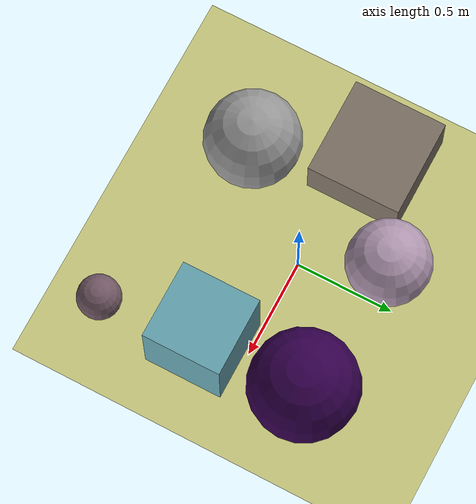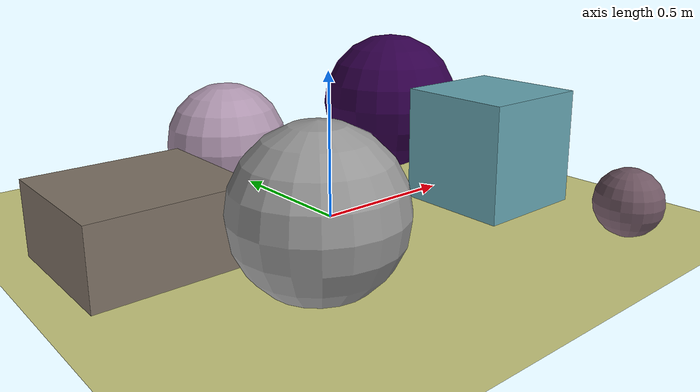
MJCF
<mujoco>
   <asset>
<texture type="skybox" builtin="gradient" rgb1="0.8 0.3 0.4" rgb2="0.9 0.4 0.2" width="256" height="256"/>
<texture name="checker_0" builtin="checker" rgb1="0.3 0.5 0.4" rgb2="0.5 0.8 1.0" width="200" height="200"/>
<texture name="flat_1" builtin="flat" rgb1="0.2 0.0 0.3" rgb2="0.2 0.0 0.3"  width="200" height="200"/>
<texture name="checker_2" builtin="checker" rgb1="0.1 0.3 0.1" rgb2="0.8 0.4 0.7" width="200" height="200"/>
<texture name="flat_3" builtin="flat" rgb1="0.7 0.6 0.7" rgb2="0.7 0.6 0.7"  width="200" height="200"/>
<texture name="gradient_4" builtin="gradient" rgb1="0.9 0.8 0.9" rgb2="0.3 0.4 0.3" width="200" height="200"/>
<texture name="gradient_5" builtin="gradient" rgb1="0.4 0.5 0.0" rgb2="0.6 0.4 0.8" width="200" height="200"/><material name="checker_0_mat" reflectance="0" texrepeat="4 4" texture="checker_0" texuniform="false" />
<material name="flat_1_mat" reflectance="0" texture="flat_1" texuniform="true"/>
<material name="checker_2_mat" reflectance="0" texrepeat="7 7" texture="checker_2" texuniform="false" />
<material name="flat_3_mat" reflectance="0" texture="flat_3" texuniform="true"/>
<material name="gradient_4_mat" reflectance="0" texture="gradient_4" texuniform="true"/>
<material name="gradient_5_mat" reflectance="0" texture="gradient_5" texuniform="true"/>
   </asset>

   <worldbody>
      <light diffuse=".9 .9 .9" pos="0 0 3" dir="0 0 -1"/>
     <geom type="plane" size="1 1 0.1" rgba="0.8 0.8 0.5 1"/>
<geom type="box" pos="0.55 -0.22 0.2" size="0.2 0.2 0.2" material="checker_0_mat" />
<geom type="sphere" pos="0.58 0.33 0.27" size="0.27 0.27 0.27" material="flat_1_mat" />
<geom type="sphere" pos="0.61 -0.74 0.11" size="0.11 0.11 0.11" material="checker_2_mat" />
<geom type="sphere" pos="-0.15 0.4 0.21" size="0.21 0.21 0.21" material="flat_3_mat" />
<geom type="sphere" pos="-0.39 -0.45 0.24" size="0.24 0.24 0.24" material="gradient_4_mat" />
<geom type="box" pos="-0.63 0.09 0.12" size="0.25 0.24 0.12" material="gradient_5_mat" /><camera euler="60 0 180" fovy="60" name="camera_a" pos="0 -1.5 1"></camera>   </worldbody>
</mujoco>
